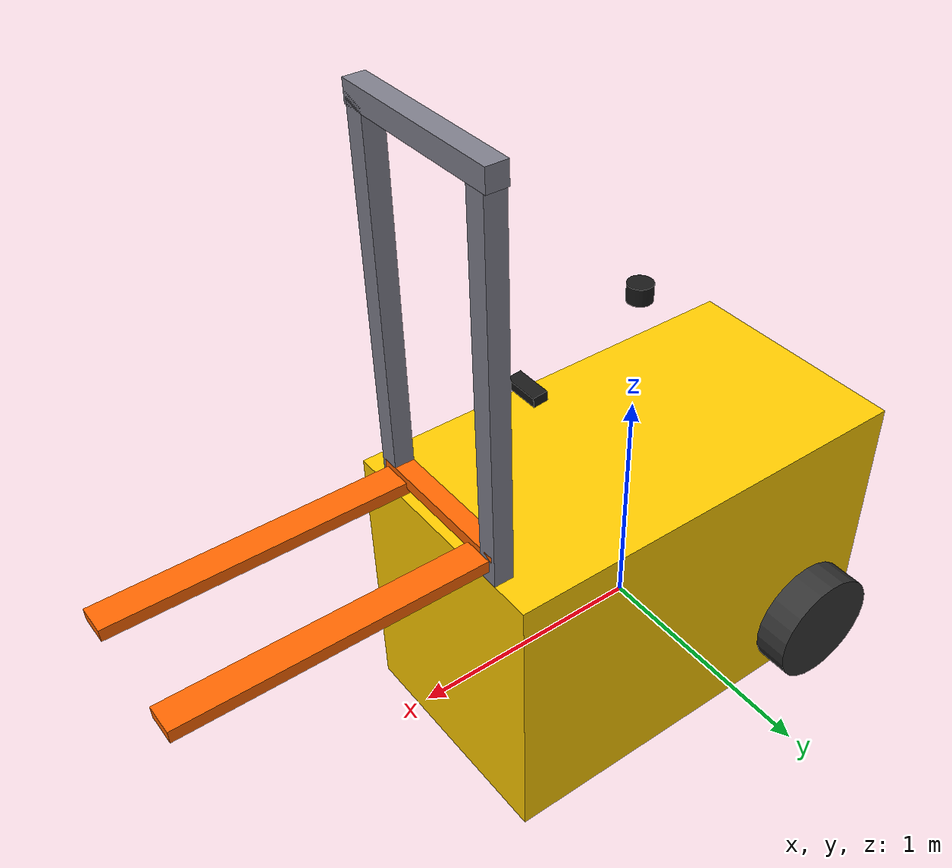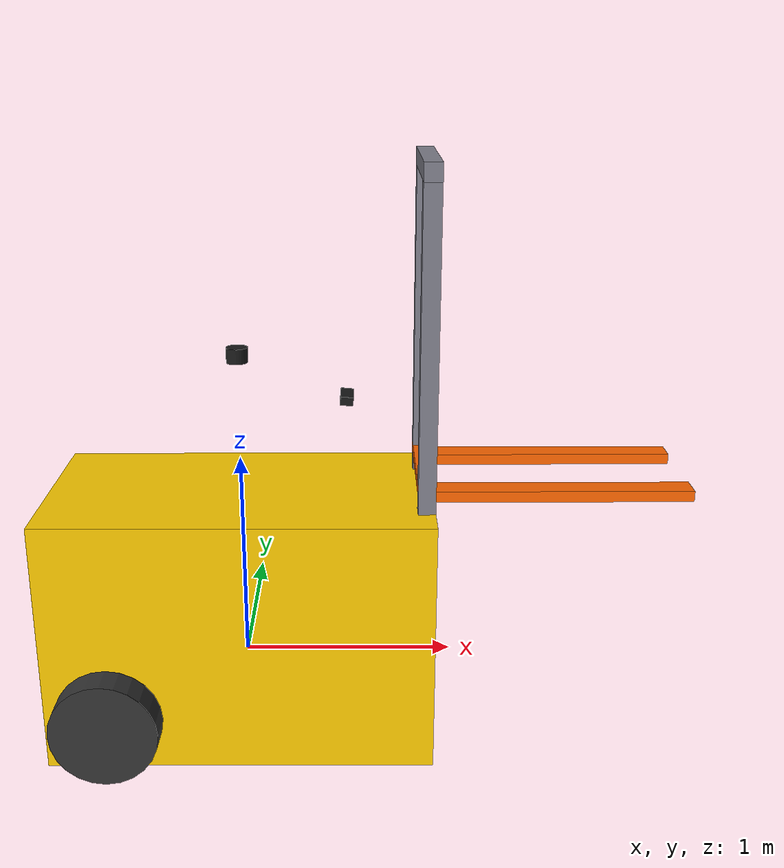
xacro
<?xml version="1.0"?>
<robot name="forklift" xmlns:xacro="http://www.ros.org/wiki/xacro">

  <!-- ==================== 常量定义 ==================== -->
  <!-- 底盘参数 -->
  <xacro:property name="base_length" value="1.8"/>   <!-- 底盘长度 m -->
  <xacro:property name="base_width" value="1.0"/>    <!-- 底盘宽度 m -->
  <xacro:property name="base_height" value="1.2"/>   <!-- 底盘高度 m -->
  <xacro:property name="base_mass" value="600.0"/>   <!-- 底盘质量 kg -->

  <!-- 驱动轮参数（后轮驱动）-->
  <xacro:property name="wheel_radius" value="0.25"/> <!-- 车轮半径 m -->
  <xacro:property name="wheel_width" value="0.15"/>  <!-- 车轮宽度 m -->
  <xacro:property name="wheel_mass" value="15.0"/>   <!-- 车轮质量 kg -->
  <!-- 驱动轮安装位置（底盘后部）-->
  <xacro:property name="wheel_x_offset" value="-0.6"/>   <!-- 相对底盘中心的X偏移 -->
  <xacro:property name="wheel_y_offset" value="0.575"/>   <!-- 相对底盘中心的Y偏移 -->
  <xacro:property name="wheel_z_offset" value="-0.35"/>   <!-- 相对底盘中心的Z偏移 -->

  <!-- 万向轮参数（前轮）-->
  <xacro:property name="caster_radius" value="0.1"/>  <!-- 万向轮半径 m -->
  <xacro:property name="caster_mass" value="3.0"/>    <!-- 万向轮质量 kg -->
  <!-- 万向轮安装位置（底盘前部）-->
  <xacro:property name="caster_x_offset" value="0.7"/>
  <xacro:property name="caster_y_offset" value="0.35"/>
  <xacro:property name="caster_z_offset" value="-0.5"/>

  <!-- 门架参数 -->
  <xacro:property name="mast_height" value="1.5"/>   <!-- 门架高度 m -->
  <xacro:property name="mast_width" value="0.08"/>   <!-- 门架宽度 m -->
  <xacro:property name="mast_depth" value="0.08"/>   <!-- 门架深度 m -->
  <xacro:property name="mast_mass" value="80.0"/>    <!-- 门架质量 kg -->

  <!-- 货叉参数 -->
  <xacro:property name="fork_length" value="1.2"/>   <!-- 货叉长度 m -->
  <xacro:property name="fork_width" value="0.12"/>   <!-- 货叉宽度 m -->
  <xacro:property name="fork_height" value="0.05"/>  <!-- 货叉高度 m -->
  <xacro:property name="fork_mass" value="30.0"/>    <!-- 货叉质量 kg -->

  <!-- ==================== 材质颜色定义 ==================== -->
  <!-- 底盘颜色：工业黄色 -->
  <material name="forklift_yellow">
    <color rgba="1.0 0.8 0.0 1.0"/>
  </material>

  <!-- 货叉颜色：橙色 -->
  <material name="fork_orange">
    <color rgba="1.0 0.4 0.0 1.0"/>
  </material>

  <!-- 车轮颜色：深灰色 -->
  <material name="wheel_dark_gray">
    <color rgba="0.2 0.2 0.2 1.0"/>
  </material>

  <!-- 相机颜色：黑色 -->
  <material name="sensor_black">
    <color rgba="0.1 0.1 0.1 1.0"/>
  </material>

  <!-- 门架颜色：金属灰 -->
  <material name="mast_gray">
    <color rgba="0.5 0.5 0.55 1.0"/>
  </material>

  <!-- ==================== 惯量计算宏 ==================== -->
  <!-- 实心长方体惯量 -->
  <xacro:macro name="box_inertia" params="mass x y z">
    <inertial>
      <mass value="${mass}"/>
      <inertia
        ixx="${(1.0/12.0) * mass * (y*y + z*z)}"
        ixy="0.0" ixz="0.0"
        iyy="${(1.0/12.0) * mass * (x*x + z*z)}"
        iyz="0.0"
        izz="${(1.0/12.0) * mass * (x*x + y*y)}"/>
    </inertial>
  </xacro:macro>

  <!-- 实心圆柱体惯量（圆柱轴沿Z轴）-->
  <xacro:macro name="cylinder_inertia" params="mass radius length">
    <inertial>
      <mass value="${mass}"/>
      <inertia
        ixx="${(1.0/12.0) * mass * (3*radius*radius + length*length)}"
        ixy="0.0" ixz="0.0"
        iyy="${(1.0/12.0) * mass * (3*radius*radius + length*length)}"
        iyz="0.0"
        izz="${0.5 * mass * radius * radius}"/>
    </inertial>
  </xacro:macro>

  <!-- 实心球体惯量 -->
  <xacro:macro name="sphere_inertia" params="mass radius">
    <inertial>
      <mass value="${mass}"/>
      <inertia
        ixx="${(2.0/5.0) * mass * radius * radius}"
        ixy="0.0" ixz="0.0"
        iyy="${(2.0/5.0) * mass * radius * radius}"
        iyz="0.0"
        izz="${(2.0/5.0) * mass * radius * radius}"/>
    </inertial>
  </xacro:macro>

  <!-- ==================== 车轮宏定义 ==================== -->
  <xacro:macro name="drive_wheel" params="name x_pos y_pos z_pos reflect">
    <link name="${name}">
      <!-- 车轮圆柱体，旋转90度使轴沿Y轴 -->
      <visual>
        <origin xyz="0 0 0" rpy="${pi/2} 0 0"/>
        <geometry>
          <cylinder radius="${wheel_radius}" length="${wheel_width}"/>
        </geometry>
        <material name="wheel_dark_gray"/>
      </visual>
      <collision>
        <origin xyz="0 0 0" rpy="${pi/2} 0 0"/>
        <geometry>
          <cylinder radius="${wheel_radius}" length="${wheel_width}"/>
        </geometry>
      </collision>
      <!-- 圆柱惯量（轴沿Y轴，因此交换ixx/izz）-->
      <inertial>
        <mass value="${wheel_mass}"/>
        <inertia
          ixx="${(1.0/12.0) * wheel_mass * (3*wheel_radius*wheel_radius + wheel_width*wheel_width)}"
          ixy="0.0" ixz="0.0"
          iyy="${0.5 * wheel_mass * wheel_radius * wheel_radius}"
          iyz="0.0"
          izz="${(1.0/12.0) * wheel_mass * (3*wheel_radius*wheel_radius + wheel_width*wheel_width)}"/>
      </inertial>
    </link>

    <joint name="${name}_joint" type="continuous">
      <parent link="base_link"/>
      <child link="${name}"/>
      <origin xyz="${x_pos} ${y_pos * reflect} ${z_pos}" rpy="0 0 0"/>
      <axis xyz="0 1 0"/>
      <!-- 设置关节摩擦和阻尼 -->
      <dynamics damping="0.5" friction="0.5"/>
      <!-- 限制速度和力矩 -->
      <limit velocity="10.0" effort="500.0"/>
    </joint>

    <!-- 车轮与地面摩擦配置（Gazebo）-->
    <gazebo reference="${name}">
      <material>Gazebo/DarkGrey</material>
      <mu1>0.9</mu1>
      <mu2>0.9</mu2>
      <kp>1000000.0</kp>
      <kd>10.0</kd>
      <minDepth>0.001</minDepth>
    </gazebo>
  </xacro:macro>

  <!-- ==================== 万向轮宏定义 ==================== -->
  <xacro:macro name="caster_wheel" params="name x_pos y_pos z_pos reflect">
    <link name="${name}">
      <!-- 使用球形简化万向轮碰撞体 -->
      <visual>
        <origin xyz="0 0 0" rpy="0 0 0"/>
        <geometry>
          <sphere radius="${caster_radius}"/>
        </geometry>
        <material name="wheel_dark_gray"/>
      </visual>
      <collision>
        <origin xyz="0 0 0" rpy="0 0 0"/>
        <geometry>
          <sphere radius="${caster_radius}"/>
        </geometry>
      </collision>
      <xacro:sphere_inertia mass="${caster_mass}" radius="${caster_radius}"/>
    </link>

    <joint name="${name}_joint" type="fixed">
      <parent link="base_link"/>
      <child link="${name}"/>
      <origin xyz="${x_pos} ${y_pos * reflect} ${z_pos}" rpy="0 0 0"/>
    </joint>

    <!-- 万向轮低摩擦配置（Gazebo）-->
    <gazebo reference="${name}">
      <material>Gazebo/DarkGrey</material>
      <mu1>0.01</mu1>
      <mu2>0.01</mu2>
      <kp>1000000.0</kp>
      <kd>10.0</kd>
    </gazebo>
  </xacro:macro>

  <!-- ==================== 链接定义 ==================== -->

  <!-- 1. base_footprint: 机器人足迹参考点（位于地面）-->
  <link name="base_footprint">
    <!-- base_footprint是虚拟link，无可视化和碰撞体 -->
  </link>

  <!-- base_footprint → base_link 固定关节 -->
  <joint name="base_joint" type="fixed">
    <parent link="base_footprint"/>
    <child link="base_link"/>
    <!-- 底盘中心距地面的高度 = 车轮半径 -->
    <origin xyz="0 0 ${wheel_radius}" rpy="0 0 0"/>
  </joint>

  <!-- 2. base_link: 叉车主体底盘 -->
  <link name="base_link">
    <visual>
      <origin xyz="0 0 0" rpy="0 0 0"/>
      <geometry>
        <box size="${base_length} ${base_width} ${base_height}"/>
      </geometry>
      <material name="forklift_yellow"/>
    </visual>
    <collision>
      <origin xyz="0 0 0" rpy="0 0 0"/>
      <geometry>
        <box size="${base_length} ${base_width} ${base_height}"/>
      </geometry>
    </collision>
    <xacro:box_inertia mass="${base_mass}" x="${base_length}" y="${base_width}" z="${base_height}"/>
  </link>

  <!-- Gazebo底盘颜色 -->
  <gazebo reference="base_link">
    <material>Gazebo/Yellow</material>
  </gazebo>

  <!-- 3 & 4. 驱动轮（后轮）：左右各一 -->
  <xacro:drive_wheel name="left_wheel"
    x_pos="${wheel_x_offset}"
    y_pos="${wheel_y_offset}"
    z_pos="${wheel_z_offset}"
    reflect="1"/>

  <xacro:drive_wheel name="right_wheel"
    x_pos="${wheel_x_offset}"
    y_pos="${wheel_y_offset}"
    z_pos="${wheel_z_offset}"
    reflect="-1"/>

  <!-- 5 & 6. 万向轮（前轮）：左右各一 -->
  <xacro:caster_wheel name="front_left_caster"
    x_pos="${caster_x_offset}"
    y_pos="${caster_y_offset}"
    z_pos="${caster_z_offset}"
    reflect="1"/>

  <xacro:caster_wheel name="front_right_caster"
    x_pos="${caster_x_offset}"
    y_pos="${caster_y_offset}"
    z_pos="${caster_z_offset}"
    reflect="-1"/>

  <!-- 7. mast_link: 门架（叉车前端立柱）-->
  <link name="mast_link">
    <!-- 左侧立柱 -->
    <visual>
      <origin xyz="0 ${0.3} ${mast_height/2}" rpy="0 0 0"/>
      <geometry>
        <box size="${mast_depth} ${mast_width} ${mast_height}"/>
      </geometry>
      <material name="mast_gray"/>
    </visual>
    <!-- 右侧立柱 -->
    <visual>
      <origin xyz="0 ${-0.3} ${mast_height/2}" rpy="0 0 0"/>
      <geometry>
        <box size="${mast_depth} ${mast_width} ${mast_height}"/>
      </geometry>
      <material name="mast_gray"/>
    </visual>
    <!-- 横梁 -->
    <visual>
      <origin xyz="0 0 ${mast_height}" rpy="0 0 0"/>
      <geometry>
        <box size="${mast_depth} 0.7 ${mast_width}"/>
      </geometry>
      <material name="mast_gray"/>
    </visual>
    <!-- 碰撞体：用单一box简化 -->
    <collision>
      <origin xyz="0 0 ${mast_height/2}" rpy="0 0 0"/>
      <geometry>
        <box size="${mast_depth} 0.7 ${mast_height}"/>
      </geometry>
    </collision>
    <xacro:box_inertia mass="${mast_mass}" x="${mast_depth}" y="0.7" z="${mast_height}"/>
  </link>

  <!-- base_link → mast_link 固定关节（门架在底盘前端）-->
  <joint name="mast_joint_fixed" type="fixed">
    <parent link="base_link"/>
    <child link="mast_link"/>
    <!-- 门架安装在底盘前端，底盘顶部 -->
    <origin xyz="${base_length/2 - mast_depth/2} 0 ${base_height/2}" rpy="0 0 0"/>
  </joint>

  <!-- Gazebo门架颜色 -->
  <gazebo reference="mast_link">
    <material>Gazebo/Grey</material>
  </gazebo>

  <!-- 8. fork_link: 货叉（L形结构）-->
  <link name="fork_link">
    <!-- 货叉横梁（连接两叉的横杆）-->
    <visual>
      <origin xyz="0 0 0" rpy="0 0 0"/>
      <geometry>
        <box size="${mast_depth} 0.65 ${fork_height}"/>
      </geometry>
      <material name="fork_orange"/>
    </visual>
    <!-- 左货叉臂 -->
    <visual>
      <origin xyz="${fork_length/2} ${0.25} ${-fork_height/2}" rpy="0 0 0"/>
      <geometry>
        <box size="${fork_length} ${fork_width} ${fork_height}"/>
      </geometry>
      <material name="fork_orange"/>
    </visual>
    <!-- 右货叉臂 -->
    <visual>
      <origin xyz="${fork_length/2} ${-0.25} ${-fork_height/2}" rpy="0 0 0"/>
      <geometry>
        <box size="${fork_length} ${fork_width} ${fork_height}"/>
      </geometry>
      <material name="fork_orange"/>
    </visual>
    <!-- 货叉碰撞体（简化为三个box）-->
    <collision>
      <origin xyz="0 0 0" rpy="0 0 0"/>
      <geometry>
        <box size="${mast_depth} 0.65 ${fork_height}"/>
      </geometry>
    </collision>
    <collision>
      <origin xyz="${fork_length/2} ${0.25} ${-fork_height/2}" rpy="0 0 0"/>
      <geometry>
        <box size="${fork_length} ${fork_width} ${fork_height}"/>
      </geometry>
    </collision>
    <collision>
      <origin xyz="${fork_length/2} ${-0.25} ${-fork_height/2}" rpy="0 0 0"/>
      <geometry>
        <box size="${fork_length} ${fork_width} ${fork_height}"/>
      </geometry>
    </collision>
    <xacro:box_inertia mass="${fork_mass}" x="${fork_length}" y="0.65" z="${fork_height}"/>
  </link>

  <!-- mast_link → fork_link 棱柱关节（货叉可沿门架上下移动）-->
  <joint name="fork_joint" type="prismatic">
    <parent link="mast_link"/>
    <child link="fork_link"/>
    <!-- 初始位置：货叉收起在底部 -->
    <origin xyz="0 0 0.1" rpy="0 0 0"/>
    <!-- 沿Z轴（垂直）移动 -->
    <axis xyz="0 0 1"/>
    <!-- 行程：0 ~ 1.5m -->
    <limit lower="0.0" upper="1.5" effort="5000.0" velocity="0.5"/>
    <dynamics damping="10.0" friction="5.0"/>
  </joint>

  <!-- Gazebo货叉颜色 -->
  <gazebo reference="fork_link">
    <material>Gazebo/Orange</material>
  </gazebo>

  <!-- 9. rgbd_camera_link: 深度相机（底盘前上方）-->
  <link name="rgbd_camera_link">
    <visual>
      <origin xyz="0 0 0" rpy="0 0 0"/>
      <geometry>
        <box size="0.06 0.15 0.04"/>
      </geometry>
      <material name="sensor_black"/>
    </visual>
    <collision>
      <origin xyz="0 0 0" rpy="0 0 0"/>
      <geometry>
        <box size="0.06 0.15 0.04"/>
      </geometry>
    </collision>
    <inertial>
      <mass value="0.2"/>
      <inertia ixx="0.0001" ixy="0" ixz="0" iyy="0.0001" iyz="0" izz="0.0001"/>
    </inertial>
  </link>

  <!-- base_link → rgbd_camera_link 固定关节 -->
  <joint name="rgbd_camera_joint" type="fixed">
    <parent link="base_link"/>
    <child link="rgbd_camera_link"/>
    <!-- 相机安装在底盘前上方
         base_footprint坐标：x=0.5（前方），z=1.3（高度）
         相对base_link中心：x=0.5, z=1.05（base_joint_z=0.25, 1.3-0.25=1.05）-->
    <origin xyz="0.5 0 1.05" rpy="0 0.1 0"/>
  </joint>

  <!-- Gazebo深度相机颜色 -->
  <gazebo reference="rgbd_camera_link">
    <material>Gazebo/Black</material>
  </gazebo>

  <!-- 深度相机Gazebo传感器插件 -->
  <gazebo reference="rgbd_camera_link">
    <sensor type="depth" name="rgbd_camera">
      <update_rate>30.0</update_rate>
      <camera name="rgbd_camera">
        <horizontal_fov>1.0472</horizontal_fov>  <!-- 60度水平视角 -->
        <image>
          <width>640</width>
          <height>480</height>
          <format>R8G8B8</format>
        </image>
        <clip>
          <near>0.1</near>
          <far>10.0</far>
        </clip>
        <noise>
          <type>gaussian</type>
          <mean>0.0</mean>
          <stddev>0.007</stddev>
        </noise>
      </camera>
      <plugin name="color_camera_plugin" filename="libgazebo_ros_camera.so">
        <ros>
          <namespace>/camera</namespace>
          <remapping>~/image_raw:=/camera/color/image_raw</remapping>
          <remapping>~/camera_info:=/camera/color/camera_info</remapping>
        </ros>
        <camera_name>color_camera</camera_name>
        <frame_name>rgbd_camera_link</frame_name>
      </plugin>
      <plugin name="depth_camera_plugin" filename="libgazebo_ros_camera.so">
        <ros>
          <namespace>/camera</namespace>
          <remapping>~/image_raw:=depth/image_raw</remapping>
          <remapping>~/camera_info:=depth/camera_info</remapping>
          <remapping>~/points:=depth/points</remapping>
        </ros>
        <camera_name>depth_camera</camera_name>
        <frame_name>rgbd_camera_link</frame_name>
        <min_depth>0.1</min_depth>
        <max_depth>10.0</max_depth>
      </plugin>
    </sensor>
  </gazebo>

  <!-- 10. lidar_link: 2D激光雷达（底盘顶部中央）-->
  <link name="lidar_link">
    <visual>
      <origin xyz="0 0 0" rpy="0 0 0"/>
      <geometry>
        <cylinder radius="0.05" length="0.07"/>
      </geometry>
      <material name="sensor_black"/>
    </visual>
    <collision>
      <origin xyz="0 0 0" rpy="0 0 0"/>
      <geometry>
        <cylinder radius="0.05" length="0.07"/>
      </geometry>
    </collision>
    <inertial>
      <mass value="0.3"/>
      <inertia ixx="0.0001" ixy="0" ixz="0" iyy="0.0001" iyz="0" izz="0.0001"/>
    </inertial>
  </link>

  <!-- base_link → lidar_link 固定关节 -->
  <joint name="lidar_joint" type="fixed">
    <parent link="base_link"/>
    <child link="lidar_link"/>
    <!-- 雷达安装在底盘顶部中央
         base_footprint坐标：z=1.5（高度）
         相对base_link中心：z=1.25（base_joint_z=0.25, 1.5-0.25=1.25）-->
    <origin xyz="0 0 1.25" rpy="0 0 0"/>
  </joint>

  <!-- Gazebo激光雷达颜色 -->
  <gazebo reference="lidar_link">
    <material>Gazebo/Black</material>
  </gazebo>

  <!-- 2D激光雷达Gazebo传感器插件 -->
  <gazebo reference="lidar_link">
    <sensor type="ray" name="lidar_sensor">
      <pose>0 0 0 0 0 0</pose>
      <visualize>false</visualize>
      <update_rate>10</update_rate>
      <ray>
        <scan>
          <horizontal>
            <!-- 270度扫描范围，分辨率0.5度 -->
            <samples>540</samples>
            <resolution>1</resolution>
            <min_angle>${-135.0 * pi / 180.0}</min_angle>
            <max_angle>${135.0 * pi / 180.0}</max_angle>
          </horizontal>
        </scan>
        <range>
          <min>0.10</min>
          <max>30.0</max>
          <resolution>0.01</resolution>
        </range>
        <noise>
          <type>gaussian</type>
          <mean>0.0</mean>
          <stddev>0.01</stddev>
        </noise>
      </ray>
      <plugin name="lidar_plugin" filename="libgazebo_ros_ray_sensor.so">
        <ros>
          <namespace>/</namespace>
          <remapping>~/out:=/scan</remapping>
        </ros>
        <output_type>sensor_msgs/LaserScan</output_type>
        <frame_name>lidar_link</frame_name>
      </plugin>
    </sensor>
  </gazebo>

  <!-- ==================== Gazebo差速驱动插件 ==================== -->
  <!--
    差速驱动控制器：
    - 订阅 /cmd_vel (geometry_msgs/Twist) 控制运动
    - 发布 /odom (nav_msgs/Odometry) 里程计信息
    - 轮距 = wheel_y_offset * 2 = 1.15m（两驱动轮间距）
  -->
  <gazebo>
    <plugin name="diff_drive_controller" filename="libgazebo_ros_diff_drive.so">
      <ros>
        <namespace>/</namespace>
      </ros>
      <!-- 更新频率 -->
      <update_rate>50</update_rate>
      <!-- 左右驱动轮关节名称 -->
      <left_joint>left_wheel_joint</left_joint>
      <right_joint>right_wheel_joint</right_joint>
      <!-- 车轮参数 -->
      <wheel_separation>1.15</wheel_separation>   <!-- 两轮中心间距 m -->
      <wheel_diameter>${2 * wheel_radius}</wheel_diameter>
      <!-- 最大加速度和扭矩 -->
      <max_wheel_torque>500</max_wheel_torque>
      <max_wheel_acceleration>1.0</max_wheel_acceleration>
      <!-- 命令话题和里程计话题 -->
      <command_topic>cmd_vel</command_topic>
      <odometry_topic>odom</odometry_topic>
      <odometry_frame>odom</odometry_frame>
      <robot_base_frame>base_footprint</robot_base_frame>
      <!-- 发布TF变换 -->
      <publish_odom>true</publish_odom>
      <publish_odom_tf>true</publish_odom_tf>
      <publish_wheel_tf>false</publish_wheel_tf>
    </plugin>
  </gazebo>

</robot>
